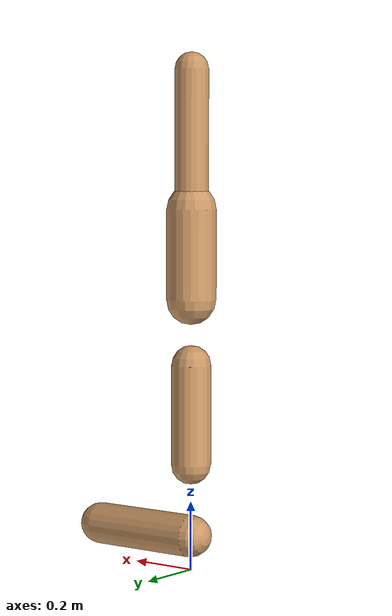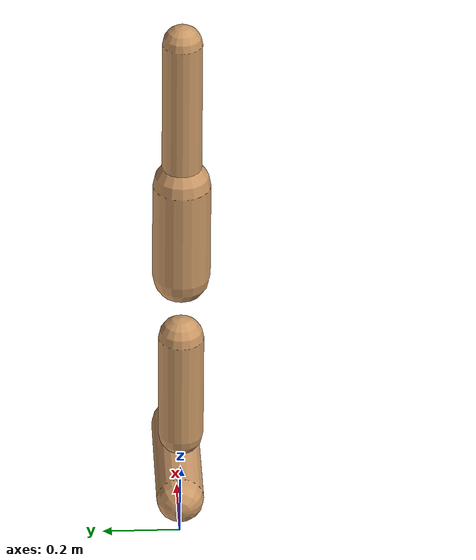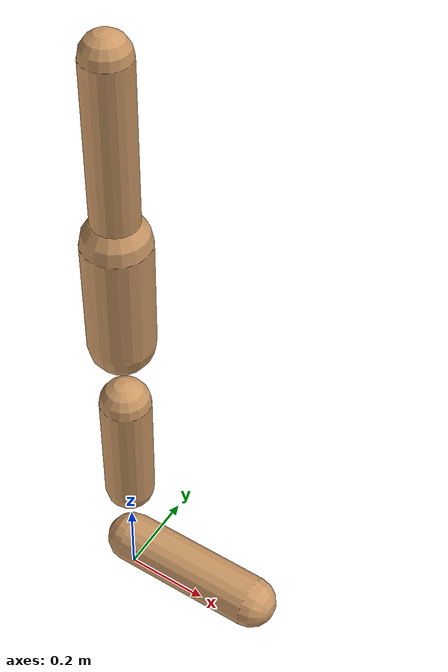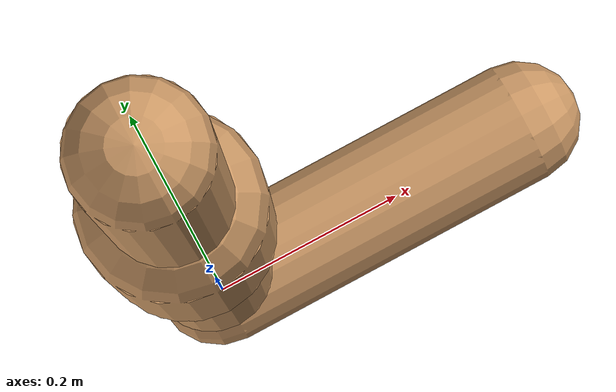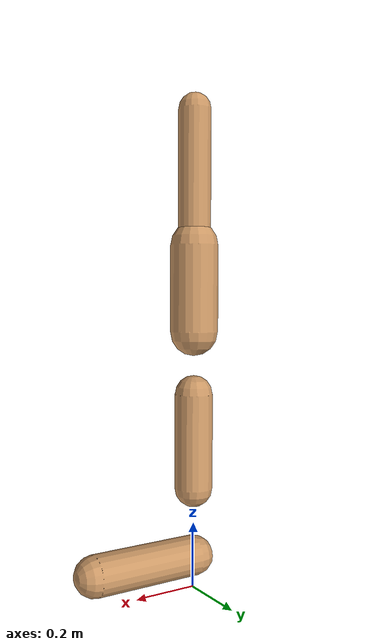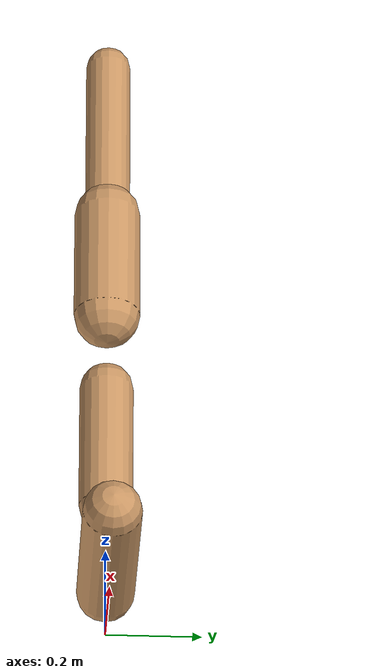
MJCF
<mujoco model="walker2d">
  <compiler angle="degree" coordinate="global" inertiafromgeom="true" />
  <default>
    <joint armature="0.01" damping=".1" limited="true" />
    <geom conaffinity="0" condim="3" contype="1" density="1000" friction="0.8 .1 .1" rgba="0.8 0.6 .4 1" />
  </default>
  <option integrator="RK4" timestep="0.002" />
  <worldbody>

    <body name="torso" pos="0 0 -0.4003845587753022">
      <joint armature="0" axis="1 0 0" damping="0" limited="false" name="ignorex" pos="0 0 0" stiffness="0" type="slide" />
      <joint armature="0" axis="0 0 1" damping="0" limited="false" name="ignorez" pos="0 0 0" ref="1.25" stiffness="0" type="slide" />
      <joint armature="0" axis="0 1 0" damping="0" limited="false" name="ignorey" pos="0 0 0" stiffness="0" type="hinge" />
      <geom fromto="0 0 1.45 0 0 1.05" name="torso_geom" size="0.04909757056322422" type="capsule" />
      <body name="thigh">
        <joint axis="0 -1 0" name="thigh_joint" pos="0 0 1.05" range="-150 0" type="hinge" />
        <geom fromto="0.0 0.0 1.05 0.0 0.0 0.7896558436304063" name="thigh_geom" size="0.0720724115729782" type="capsule" />
        <body name="leg" pos="0.0 0.0 0.18965584363040633">
          <joint axis="0 -1 0" name="leg_joint" pos="0 0 0.6" range="-150 0" type="hinge" />
          <geom fromto="0.0 0.0 0.6 0.0 0.0 0.31072871514489586" name="leg_geom" size="0.057657929258382555" type="capsule" />
          <body name="foot" pos="0.0 0.0 0.21072871514489586">
            <joint axis="0 -1 0" name="foot_joint" pos="0 0 0.1" range="-45 45" type="hinge" />
            <geom fromto="-0.0 0.0 0.1 0.3371719328557241 0.0 0.1" name="foot_geom" size="0.06099941149913951" type="capsule" />
          </body>
        </body>
      </body>

      <body name="thigh_left">
        <joint axis="0 -1 0" name="thigh_left_joint" pos="0 0 1.05" range="-150 0" type="hinge" />
        <geom fromto="0.0 0.0 1.05 0.0 0.0 0.7896558436304063" name="thigh_left_geom" rgba=".7 .3 .6 1" size="0.0720724115729782" type="capsule" />
        <body name="leg_left" pos="0.0 0.0 0.18965584363040633">
          <joint axis="0 -1 0" name="leg_left_joint" pos="0 0 0.6" range="-150 0" type="hinge" />
          <geom fromto="0.0 0.0 0.6 0.0 0.0 0.31072871514489586" name="leg_left_geom" rgba=".7 .3 .6 1" size="0.057657929258382555" type="capsule" />
          <body name="foot_left" pos="0.0 0.0 0.21072871514489586">
            <joint axis="0 -1 0" name="foot_left_joint" pos="0 0 0.1" range="-45 45" type="hinge" />
            <geom fromto="-0.0 0.0 0.1 0.3371719328557241 0.0 0.1" name="foot_left_geom" rgba=".7 .3 .6 1" size="0.06099941149913951" type="capsule" />
          </body>
        </body>
      </body>
    </body>
  </worldbody>
  <actuator>

    <motor ctrllimited="true" ctrlrange="-1.0 1.0" gear="100" joint="thigh_joint" />
    <motor ctrllimited="true" ctrlrange="-1.0 1.0" gear="100" joint="leg_joint" />
    <motor ctrllimited="true" ctrlrange="-1.0 1.0" gear="100" joint="foot_joint" />
    <motor ctrllimited="true" ctrlrange="-1.0 1.0" gear="100" joint="thigh_left_joint" />
    <motor ctrllimited="true" ctrlrange="-1.0 1.0" gear="100" joint="leg_left_joint" />
    <motor ctrllimited="true" ctrlrange="-1.0 1.0" gear="100" joint="foot_left_joint" />

  </actuator>
</mujoco>
